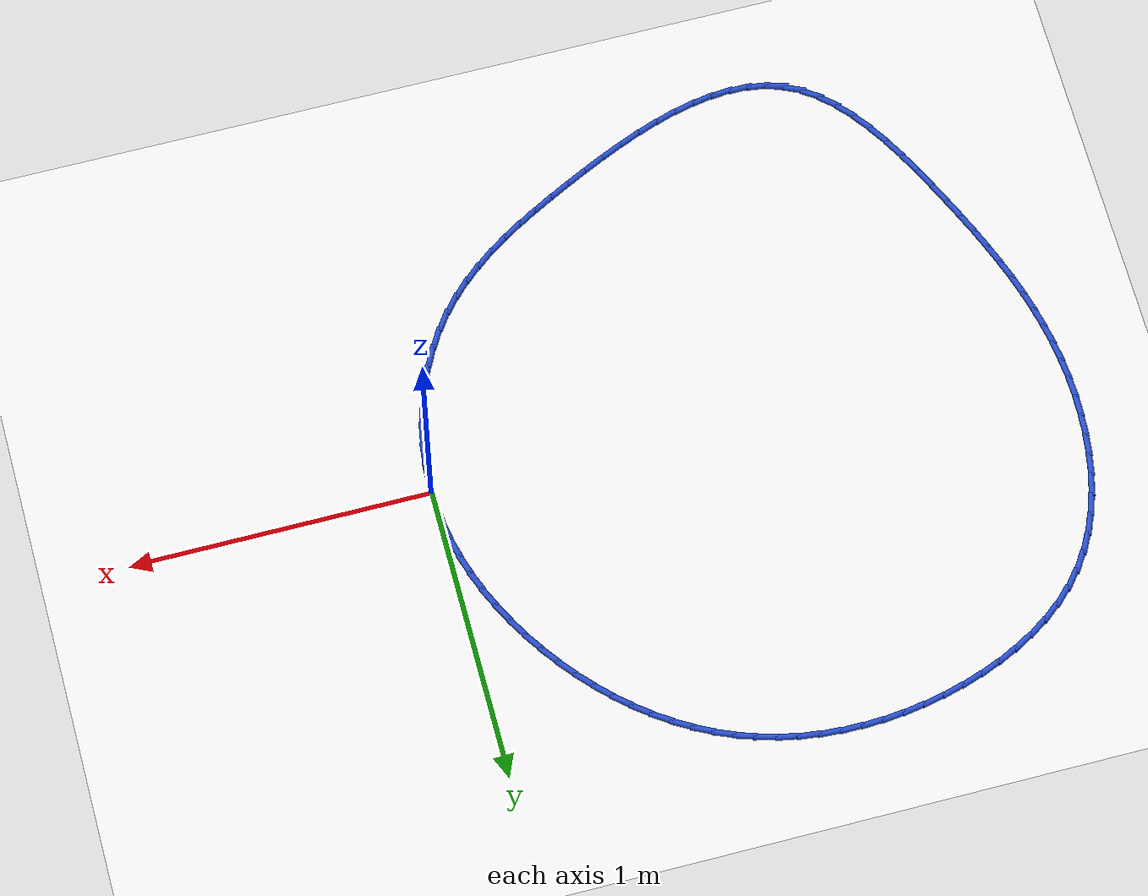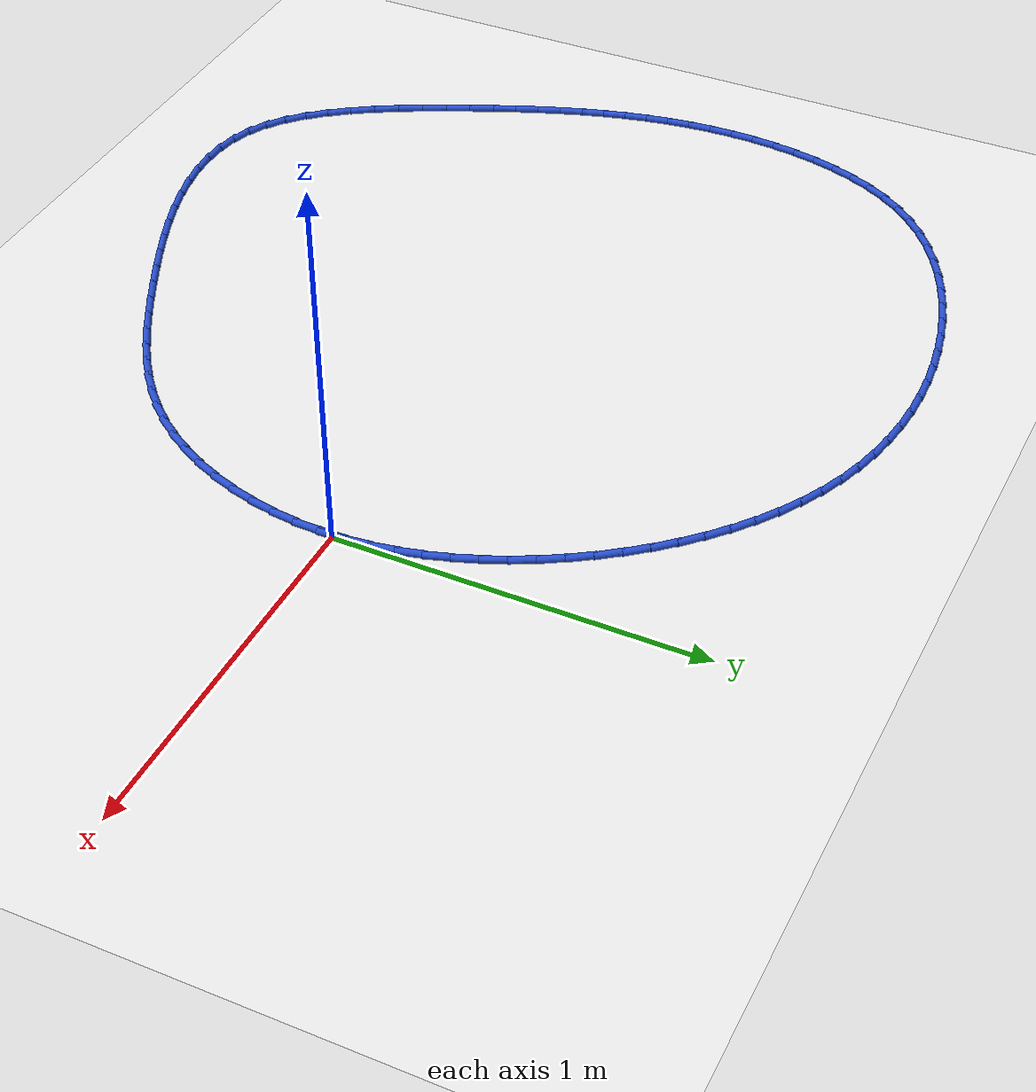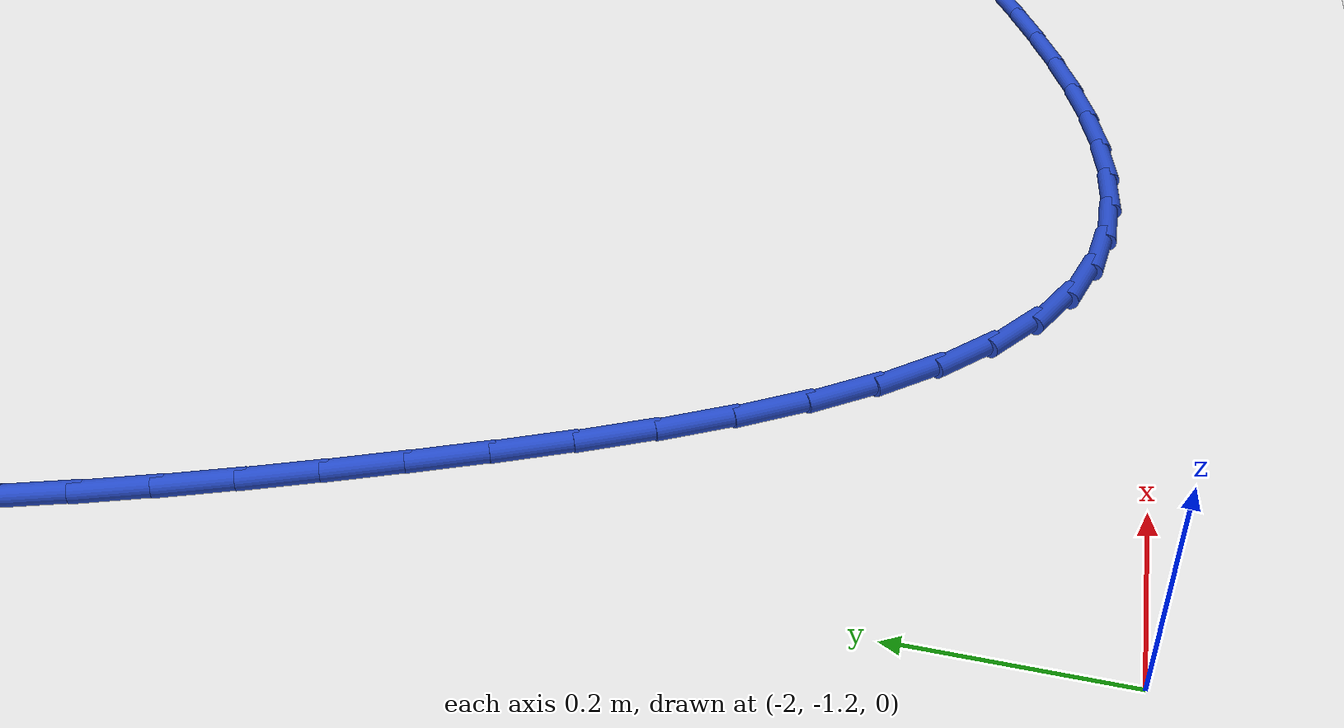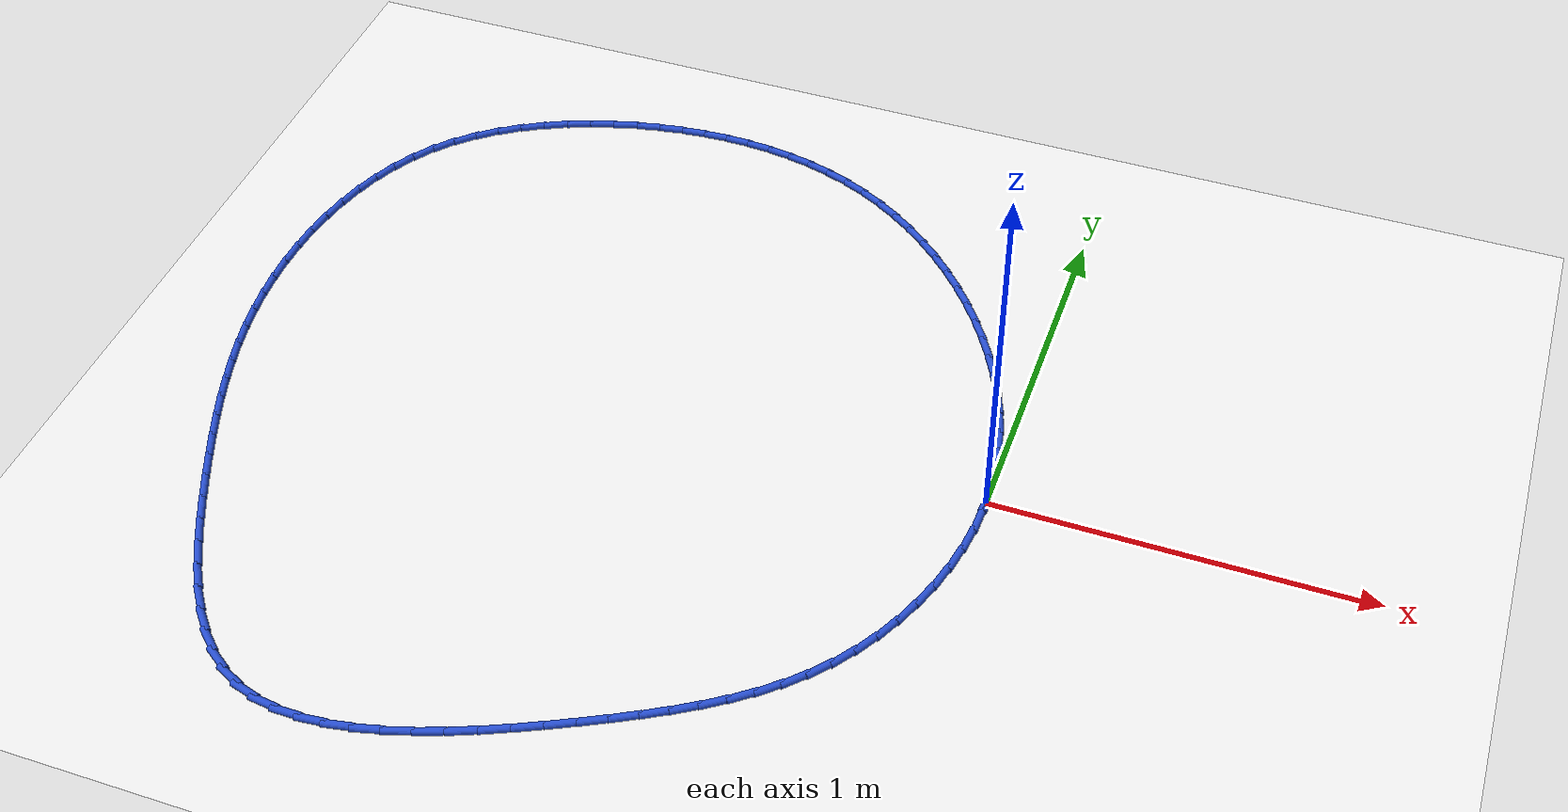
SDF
<sdf version="1.6">
 <world name="default">
  <light name="sun" type="directional">
   <pose>0 0 10 0 -0 0</pose>
   <diffuse>0.8 0.8 0.8 1</diffuse>
   <specular>0.2 0.2 0.2 1</specular>
   <attenuation>
    <range>1000</range>
    <constant>0.9</constant>
    <linear>0.01</linear>
    <quadratic>0.001</quadratic>
   </attenuation>
   <direction>-0.5 0.1 -0.9</direction>
  </light>
  <model name="ground_plane">
   <static>1</static>
   <link name="link">
    <collision name="collision">
     <geometry><plane><normal>0 0 1</normal><size>100 100</size></plane></geometry>
     <surface><friction><ode><mu>100</mu><mu2>50</mu2></ode></friction></surface>
    </collision>
    <visual name="visual">
     <cast_shadows>0</cast_shadows>
     <geometry><plane><normal>0 0 1</normal><size>100 100</size></plane></geometry>
     <material>
      <script><uri>file://media/materials/scripts/gazebo.material</uri><name>Gazebo/WhiteGlow</name></script>
     </material>
    </visual>
   </link>
  </model>
  <gravity>0 0 -9.8</gravity>
  <magnetic_field>6e-06 2.3e-05 -4.2e-05</magnetic_field>
  <atmosphere type="adiabatic"/>
  <physics name="default_physics" default="0" type="ode">
   <max_step_size>0.001</max_step_size>
   <real_time_factor>1</real_time_factor>
   <real_time_update_rate>1000</real_time_update_rate>
  </physics>
  <scene><ambient>0.4 0.4 0.4 1</ambient><background>0.7 0.7 0.7 1</background><shadows>1</shadows></scene>
  <spherical_coordinates>
   <surface_model>EARTH_WGS84</surface_model>
   <latitude_deg>0</latitude_deg>
   <longitude_deg>0</longitude_deg>
   <elevation>0</elevation>
   <heading_deg>0</heading_deg>
  </spherical_coordinates>
  <model name="line">
   <link name="link_0">
    <pose>-1.734723475976807e-17 4.163336342344337e-17 0.01 0 1.57 -1.5245327514098617</pose>
    <collision name="collision">
     <geometry><cylinder><radius>0.01</radius><length>0.08</length></cylinder></geometry>
    </collision>
    <visual name="visual">
     <material>
      <script><name>Gazebo/Blue</name><uri>file://media/materials/scripts/gazebo.material</uri></script>
     </material>
     <geometry><cylinder><radius>0.01</radius><length>0.08</length></cylinder></geometry>
    </visual>
   </link>
   <link name="link_1">
    <pose>-0.0031682612257454877 0.06843397887424127 0.01 0 1.57 -1.4518402445026588</pose>
    <collision name="collision">
     <geometry><cylinder><radius>0.01</radius><length>0.08</length></cylinder></geometry>
    </collision>
    <visual name="visual">
     <material>
      <script><name>Gazebo/Blue</name><uri>file://media/materials/scripts/gazebo.material</uri></script>
     </material>
     <geometry><cylinder><radius>0.01</radius><length>0.08</length></cylinder></geometry>
    </visual>
   </link>
   <link name="link_2">
    <pose>-0.011260114556649457 0.13613668951708363 0.01 0 1.57 -1.3819856675036761</pose>
    <collision name="collision">
     <geometry><cylinder><radius>0.01</radius><length>0.08</length></cylinder></geometry>
    </collision>
    <visual name="visual">
     <material>
      <script><name>Gazebo/Blue</name><uri>file://media/materials/scripts/gazebo.material</uri></script>
     </material>
     <geometry><cylinder><radius>0.01</radius><length>0.08</length></cylinder></geometry>
    </visual>
   </link>
   <link name="link_3">
    <pose>-0.024033953671069794 0.20298505319004592 0.01 0 1.57 -1.31518052326842</pose>
    <collision name="collision">
     <geometry><cylinder><radius>0.01</radius><length>0.08</length></cylinder></geometry>
    </collision>
    <visual name="visual">
     <material>
      <script><name>Gazebo/Blue</name><uri>file://media/materials/scripts/gazebo.material</uri></script>
     </material>
     <geometry><cylinder><radius>0.01</radius><length>0.08</length></cylinder></geometry>
    </visual>
   </link>
   <link name="link_4">
    <pose>-0.041248172247364344 0.2688559911546471 0.01 0 1.57 -1.2515093674222222</pose>
    <collision name="collision">
     <geometry><cylinder><radius>0.01</radius><length>0.08</length></cylinder></geometry>
    </collision>
    <visual name="visual">
     <material>
      <script><name>Gazebo/Blue</name><uri>file://media/materials/scripts/gazebo.material</uri></script>
     </material>
     <geometry><cylinder><radius>0.01</radius><length>0.08</length></cylinder></geometry>
    </visual>
   </link>
   <link name="link_5">
    <pose>-0.06266116396389096 0.3336264246724057 0.01 0 1.57 -1.190949175514414</pose>
    <collision name="collision">
     <geometry><cylinder><radius>0.01</radius><length>0.08</length></cylinder></geometry>
    </collision>
    <visual name="visual">
     <material>
      <script><name>Gazebo/Blue</name><uri>file://media/materials/scripts/gazebo.material</uri></script>
     </material>
     <geometry><cylinder><radius>0.01</radius><length>0.08</length></cylinder></geometry>
    </visual>
   </link>
   <link name="link_6">
    <pose>-0.0880313224990075 0.39717327500484084 0.01 0 1.57 -1.1333910003290848</pose>
    <collision name="collision">
     <geometry><cylinder><radius>0.01</radius><length>0.08</length></cylinder></geometry>
    </collision>
    <visual name="visual">
     <material>
      <script><name>Gazebo/Blue</name><uri>file://media/materials/scripts/gazebo.material</uri></script>
     </material>
     <geometry><cylinder><radius>0.01</radius><length>0.08</length></cylinder></geometry>
    </visual>
   </link>
   <link name="link_7">
    <pose>-0.11711704153107189 0.45937346341347135 0.01 0 1.57 -1.0786608907347195</pose>
    <collision name="collision">
     <geometry><cylinder><radius>0.01</radius><length>0.08</length></cylinder></geometry>
    </collision>
    <visual name="visual">
     <material>
      <script><name>Gazebo/Blue</name><uri>file://media/materials/scripts/gazebo.material</uri></script>
     </material>
     <geometry><cylinder><radius>0.01</radius><length>0.08</length></cylinder></geometry>
    </visual>
   </link>
   <link name="link_8">
    <pose>-0.14967671473844185 0.5201039111598158 0.01 0 1.57 -1.0265382006921953</pose>
    <collision name="collision">
     <geometry><cylinder><radius>0.01</radius><length>0.08</length></cylinder></geometry>
    </collision>
    <visual name="visual">
     <material>
      <script><name>Gazebo/Blue</name><uri>file://media/materials/scripts/gazebo.material</uri></script>
     </material>
     <geometry><cylinder><radius>0.01</radius><length>0.08</length></cylinder></geometry>
    </visual>
   </link>
   <link name="link_9">
    <pose>-0.18546873579947526 0.5792415395053929 0.01 0 1.57 -0.9764820869999071</pose>
    <collision name="collision">
     <geometry><cylinder><radius>0.01</radius><length>0.08</length></cylinder></geometry>
    </collision>
    <visual name="visual">
     <material>
      <script><name>Gazebo/Blue</name><uri>file://media/materials/scripts/gazebo.material</uri></script>
     </material>
     <geometry><cylinder><radius>0.01</radius><length>0.08</length></cylinder></geometry>
    </visual>
   </link>
   <link name="link_10">
    <pose>-0.2242650533660335 0.6366476474348572 0.01 0 1.57 -0.9263888777854111</pose>
    <collision name="collision">
     <geometry><cylinder><radius>0.01</radius><length>0.08</length></cylinder></geometry>
    </collision>
    <visual name="visual">
     <material>
      <script><name>Gazebo/Blue</name><uri>file://media/materials/scripts/gazebo.material</uri></script>
     </material>
     <geometry><cylinder><radius>0.01</radius><length>0.08</length></cylinder></geometry>
    </visual>
   </link>
   <link name="link_11">
    <pose>-0.26592231688586726 0.692085915203934 0.01 0 1.57 -0.8752031351286038</pose>
    <collision name="collision">
     <geometry><cylinder><radius>0.01</radius><length>0.08</length></cylinder></geometry>
    </collision>
    <visual name="visual">
     <material>
      <script><name>Gazebo/Blue</name><uri>file://media/materials/scripts/gazebo.material</uri></script>
     </material>
     <geometry><cylinder><radius>0.01</radius><length>0.08</length></cylinder></geometry>
    </visual>
   </link>
   <link name="link_12">
    <pose>-0.3103298285713556 0.7452823903478354 0.01 0 1.57 -0.8225610478972523</pose>
    <collision name="collision">
     <geometry><cylinder><radius>0.01</radius><length>0.08</length></cylinder></geometry>
    </collision>
    <visual name="visual">
     <material>
      <script><name>Gazebo/Blue</name><uri>file://media/materials/scripts/gazebo.material</uri></script>
     </material>
     <geometry><cylinder><radius>0.01</radius><length>0.08</length></cylinder></geometry>
    </visual>
   </link>
   <link name="link_13">
    <pose>-0.35737695978689793 0.7959630407032033 0.01 0 1.57 -0.7681085963375468</pose>
    <collision name="collision">
     <geometry><cylinder><radius>0.01</radius><length>0.08</length></cylinder></geometry>
    </collision>
    <visual name="visual">
     <material>
      <script><name>Gazebo/Blue</name><uri>file://media/materials/scripts/gazebo.material</uri></script>
     </material>
     <geometry><cylinder><radius>0.01</radius><length>0.08</length></cylinder></geometry>
    </visual>
   </link>
   <link name="link_14">
    <pose>-0.40695308189689355 0.8438538341066795 0.01 0 1.57 -0.711504061850845</pose>
    <collision name="collision">
     <geometry><cylinder><radius>0.01</radius><length>0.08</length></cylinder></geometry>
    </collision>
    <visual name="visual">
     <material>
      <script><name>Gazebo/Blue</name><uri>file://media/materials/scripts/gazebo.material</uri></script>
     </material>
     <geometry><cylinder><radius>0.01</radius><length>0.08</length></cylinder></geometry>
    </visual>
   </link>
   <link name="link_15">
    <pose>-0.45894756626574174 0.8886807383949054 0.01 0 1.57 -0.6524253490353193</pose>
    <collision name="collision">
     <geometry><cylinder><radius>0.01</radius><length>0.08</length></cylinder></geometry>
    </collision>
    <visual name="visual">
     <material>
      <script><name>Gazebo/Blue</name><uri>file://media/materials/scripts/gazebo.material</uri></script>
     </material>
     <geometry><cylinder><radius>0.01</radius><length>0.08</length></cylinder></geometry>
    </visual>
   </link>
   <link name="link_16">
    <pose>-0.5132497842578418 0.9301697214045229 0.01 0 1.57 -0.5905813440640889</pose>
    <collision name="collision">
     <geometry><cylinder><radius>0.01</radius><length>0.08</length></cylinder></geometry>
    </collision>
    <visual name="visual">
     <material>
      <script><name>Gazebo/Blue</name><uri>file://media/materials/scripts/gazebo.material</uri></script>
     </material>
     <geometry><cylinder><radius>0.01</radius><length>0.08</length></cylinder></geometry>
    </visual>
   </link>
   <link name="link_17">
    <pose>-0.5697491072375935 0.968046750972174 0.01 0 1.57 -0.5257278582089316</pose>
    <collision name="collision">
     <geometry><cylinder><radius>0.01</radius><length>0.08</length></cylinder></geometry>
    </collision>
    <visual name="visual">
     <material>
      <script><name>Gazebo/Blue</name><uri>file://media/materials/scripts/gazebo.material</uri></script>
     </material>
     <geometry><cylinder><radius>0.01</radius><length>0.08</length></cylinder></geometry>
    </visual>
   </link>
   <link name="link_18">
    <pose>-0.628334906569396 1.0020377949345003 0.01 0 1.57 -0.45768829621010804</pose>
    <collision name="collision">
     <geometry><cylinder><radius>0.01</radius><length>0.08</length></cylinder></geometry>
    </collision>
    <visual name="visual">
     <material>
      <script><name>Gazebo/Blue</name><uri>file://media/materials/scripts/gazebo.material</uri></script>
     </material>
     <geometry><cylinder><radius>0.01</radius><length>0.08</length></cylinder></geometry>
    </visual>
   </link>
   <link name="link_19">
    <pose>-0.6888965536176486 1.0318688211281437 0.01 0 1.57 -0.3865698012630083</pose>
    <collision name="collision">
     <geometry><cylinder><radius>0.01</radius><length>0.08</length></cylinder></geometry>
    </collision>
    <visual name="visual">
     <material>
      <script><name>Gazebo/Blue</name><uri>file://media/materials/scripts/gazebo.material</uri></script>
     </material>
     <geometry><cylinder><radius>0.01</radius><length>0.08</length></cylinder></geometry>
    </visual>
   </link>
   <link name="link_20">
    <pose>-0.7513191730528106 1.0572779957554557 0.01 0 1.57 -0.3154298299164534</pose>
    <collision name="collision">
     <geometry><cylinder><radius>0.01</radius><length>0.08</length></cylinder></geometry>
    </collision>
    <visual name="visual">
     <material>
      <script><name>Gazebo/Blue</name><uri>file://media/materials/scripts/gazebo.material</uri></script>
     </material>
     <geometry><cylinder><radius>0.01</radius><length>0.08</length></cylinder></geometry>
    </visual>
   </link>
   <link name="link_21">
    <pose>-0.8154208743353516 1.0781959820650089 0.01 0 1.57 -0.24676630924045534</pose>
    <collision name="collision">
     <geometry><cylinder><radius>0.01</radius><length>0.08</length></cylinder></geometry>
    </collision>
    <visual name="visual">
     <material>
      <script><name>Gazebo/Blue</name><uri>file://media/materials/scripts/gazebo.material</uri></script>
     </material>
     <geometry><cylinder><radius>0.01</radius><length>0.08</length></cylinder></geometry>
    </visual>
   </link>
   <link name="link_22">
    <pose>-0.880966342949498 1.0947069003731886 0.01 0 1.57 -0.18065716747019908</pose>
    <collision name="collision">
     <geometry><cylinder><radius>0.01</radius><length>0.08</length></cylinder></geometry>
    </collision>
    <visual name="visual">
     <material>
      <script><name>Gazebo/Blue</name><uri>file://media/materials/scripts/gazebo.material</uri></script>
     </material>
     <geometry><cylinder><radius>0.01</radius><length>0.08</length></cylinder></geometry>
    </visual>
   </link>
   <link name="link_23">
    <pose>-0.9477187797841551 1.106899135404628 0.01 0 1.57 -0.1170296740622592</pose>
    <collision name="collision">
     <geometry><cylinder><radius>0.01</radius><length>0.08</length></cylinder></geometry>
    </collision>
    <visual name="visual">
     <material>
      <script><name>Gazebo/Blue</name><uri>file://media/materials/scripts/gazebo.material</uri></script>
     </material>
     <geometry><cylinder><radius>0.01</radius><length>0.08</length></cylinder></geometry>
    </visual>
   </link>
   <link name="link_24">
    <pose>-1.0154413857282276 1.1148610718839607 0.01 0 1.57 -0.055744803781004146</pose>
    <collision name="collision">
     <geometry><cylinder><radius>0.01</radius><length>0.08</length></cylinder></geometry>
    </collision>
    <visual name="visual">
     <material>
      <script><name>Gazebo/Blue</name><uri>file://media/materials/scripts/gazebo.material</uri></script>
     </material>
     <geometry><cylinder><radius>0.01</radius><length>0.08</length></cylinder></geometry>
    </visual>
   </link>
   <link name="link_25">
    <pose>-1.0838973616706207 1.1186810945358188 0.01 0 1.57 0.0033864674923224066</pose>
    <collision name="collision">
     <geometry><cylinder><radius>0.01</radius><length>0.08</length></cylinder></geometry>
    </collision>
    <visual name="visual">
     <material>
      <script><name>Gazebo/Blue</name><uri>file://media/materials/scripts/gazebo.material</uri></script>
     </material>
     <geometry><cylinder><radius>0.01</radius><length>0.08</length></cylinder></geometry>
    </visual>
   </link>
   <link name="link_26">
    <pose>-1.15284990850024 1.1184475880848368 0.01 0 1.57 0.06058909530724834</pose>
    <collision name="collision">
     <geometry><cylinder><radius>0.01</radius><length>0.08</length></cylinder></geometry>
    </collision>
    <visual name="visual">
     <material>
      <script><name>Gazebo/Blue</name><uri>file://media/materials/scripts/gazebo.material</uri></script>
     </material>
     <geometry><cylinder><radius>0.01</radius><length>0.08</length></cylinder></geometry>
    </visual>
   </link>
   <link name="link_27">
    <pose>-1.22206222710599 1.1142489372556472 0.01 0 1.57 0.11611255534356947</pose>
    <collision name="collision">
     <geometry><cylinder><radius>0.01</radius><length>0.08</length></cylinder></geometry>
    </collision>
    <visual name="visual">
     <material>
      <script><name>Gazebo/Blue</name><uri>file://media/materials/scripts/gazebo.material</uri></script>
     </material>
     <geometry><cylinder><radius>0.01</radius><length>0.08</length></cylinder></geometry>
    </visual>
   </link>
   <link name="link_28">
    <pose>-1.2912975183767759 1.1061735267728834 0.01 0 1.57 0.170222073601596</pose>
    <collision name="collision">
     <geometry><cylinder><radius>0.01</radius><length>0.08</length></cylinder></geometry>
    </collision>
    <visual name="visual">
     <material>
      <script><name>Gazebo/Blue</name><uri>file://media/materials/scripts/gazebo.material</uri></script>
     </material>
     <geometry><cylinder><radius>0.01</radius><length>0.08</length></cylinder></geometry>
    </visual>
   </link>
   <link name="link_29">
    <pose>-1.3603189832015026 1.0943097413611784 0.01 0 1.57 0.2231922685439485</pose>
    <collision name="collision">
     <geometry><cylinder><radius>0.01</radius><length>0.08</length></cylinder></geometry>
    </collision>
    <visual name="visual">
     <material>
      <script><name>Gazebo/Blue</name><uri>file://media/materials/scripts/gazebo.material</uri></script>
     </material>
     <geometry><cylinder><radius>0.01</radius><length>0.08</length></cylinder></geometry>
    </visual>
   </link>
   <link name="link_30">
    <pose>-1.4288898183981091 1.0787459633064551 0.01 0 1.57 0.2760408595518879</pose>
    <collision name="collision">
     <geometry><cylinder><radius>0.01</radius><length>0.08</length></cylinder></geometry>
    </collision>
    <visual name="visual">
     <material>
      <script><name>Gazebo/Blue</name><uri>file://media/materials/scripts/gazebo.material</uri></script>
     </material>
     <geometry><cylinder><radius>0.01</radius><length>0.08</length></cylinder></geometry>
    </visual>
   </link>
   <link name="link_31">
    <pose>-1.4967118781594464 1.059533827619664 0.01 0 1.57 0.33188574661725295</pose>
    <collision name="collision">
     <geometry><cylinder><radius>0.01</radius><length>0.08</length></cylinder></geometry>
    </collision>
    <visual name="visual">
     <material>
      <script><name>Gazebo/Blue</name><uri>file://media/materials/scripts/gazebo.material</uri></script>
     </material>
     <geometry><cylinder><radius>0.01</radius><length>0.08</length></cylinder></geometry>
    </visual>
   </link>
   <link name="link_32">
    <pose>-1.5632707652836333 1.03659542400042 0.01 0 1.57 0.39213912290106556</pose>
    <collision name="collision">
     <geometry><cylinder><radius>0.01</radius><length>0.08</length></cylinder></geometry>
    </collision>
    <visual name="visual">
     <material>
      <script><name>Gazebo/Blue</name><uri>file://media/materials/scripts/gazebo.material</uri></script>
     </material>
     <geometry><cylinder><radius>0.01</radius><length>0.08</length></cylinder></geometry>
    </visual>
   </link>
   <link name="link_33">
    <pose>-1.6280044534876907 1.0098243099663966 0.01 0 1.57 0.4576894419616904</pose>
    <collision name="collision">
     <geometry><cylinder><radius>0.01</radius><length>0.08</length></cylinder></geometry>
    </collision>
    <visual name="visual">
     <material>
      <script><name>Gazebo/Blue</name><uri>file://media/materials/scripts/gazebo.material</uri></script>
     </material>
     <geometry><cylinder><radius>0.01</radius><length>0.08</length></cylinder></geometry>
    </visual>
   </link>
   <link name="link_34">
    <pose>-1.6903509164886374 0.9791140430352658 0.01 0 1.57 0.5294235997482111</pose>
    <collision name="collision">
     <geometry><cylinder><radius>0.01</radius><length>0.08</length></cylinder></geometry>
    </collision>
    <visual name="visual">
     <material>
      <script><name>Gazebo/Blue</name><uri>file://media/materials/scripts/gazebo.material</uri></script>
     </material>
     <geometry><cylinder><radius>0.01</radius><length>0.08</length></cylinder></geometry>
    </visual>
   </link>
   <link name="link_35">
    <pose>-1.7497481280034919 0.9443581807246997 0.01 0 1.57 0.6081724363530938</pose>
    <collision name="collision">
     <geometry><cylinder><radius>0.01</radius><length>0.08</length></cylinder></geometry>
    </collision>
    <visual name="visual">
     <material>
      <script><name>Gazebo/Blue</name><uri>file://media/materials/scripts/gazebo.material</uri></script>
     </material>
     <geometry><cylinder><radius>0.01</radius><length>0.08</length></cylinder></geometry>
    </visual>
   </link>
   <link name="link_36">
    <pose>-1.8056340617492739 0.9054502805523715 0.01 0 1.57 0.694615123692621</pose>
    <collision name="collision">
     <geometry><cylinder><radius>0.01</radius><length>0.08</length></cylinder></geometry>
    </collision>
    <visual name="visual">
     <material>
      <script><name>Gazebo/Blue</name><uri>file://media/materials/scripts/gazebo.material</uri></script>
     </material>
     <geometry><cylinder><radius>0.01</radius><length>0.08</length></cylinder></geometry>
    </visual>
   </link>
   <link name="link_37">
    <pose>-1.8574466914430026 0.8622839000359528 0.01 0 1.57 0.7891359688915993</pose>
    <collision name="collision">
     <geometry><cylinder><radius>0.01</radius><length>0.08</length></cylinder></geometry>
    </collision>
    <visual name="visual">
     <material>
      <script><name>Gazebo/Blue</name><uri>file://media/materials/scripts/gazebo.material</uri></script>
     </material>
     <geometry><cylinder><radius>0.01</radius><length>0.08</length></cylinder></geometry>
    </visual>
   </link>
   <link name="link_38">
    <pose>-1.904623990801697 0.8147525966931166 0.01 0 1.57 0.8915822404530481</pose>
    <collision name="collision">
     <geometry><cylinder><radius>0.01</radius><length>0.08</length></cylinder></geometry>
    </collision>
    <visual name="visual">
     <material>
      <script><name>Gazebo/Blue</name><uri>file://media/materials/scripts/gazebo.material</uri></script>
     </material>
     <geometry><cylinder><radius>0.01</radius><length>0.08</length></cylinder></geometry>
    </visual>
   </link>
   <link name="link_39">
    <pose>-1.946606820615674 0.7627526121469718 0.01 0 1.57 0.9959120641032392</pose>
    <collision name="collision">
     <geometry><cylinder><radius>0.01</radius><length>0.08</length></cylinder></geometry>
    </collision>
    <visual name="visual">
     <material>
      <script><name>Gazebo/Blue</name><uri>file://media/materials/scripts/gazebo.material</uri></script>
     </material>
     <geometry><cylinder><radius>0.01</radius><length>0.08</length></cylinder></geometry>
    </visual>
   </link>
   <link name="link_40">
    <pose>-1.9831000234935874 0.7064256113129412 0.01 0 1.57 1.092030992431349</pose>
    <collision name="collision">
     <geometry><cylinder><radius>0.01</radius><length>0.08</length></cylinder></geometry>
    </collision>
    <visual name="visual">
     <material>
      <script><name>Gazebo/Blue</name><uri>file://media/materials/scripts/gazebo.material</uri></script>
     </material>
     <geometry><cylinder><radius>0.01</radius><length>0.08</length></cylinder></geometry>
    </visual>
   </link>
   <link name="link_41">
    <pose>-2.0142806457669553 0.6463522658268261 0.01 0 1.57 1.1791985986544256</pose>
    <collision name="collision">
     <geometry><cylinder><radius>0.01</radius><length>0.08</length></cylinder></geometry>
    </collision>
    <visual name="visual">
     <material>
      <script><name>Gazebo/Blue</name><uri>file://media/materials/scripts/gazebo.material</uri></script>
     </material>
     <geometry><cylinder><radius>0.01</radius><length>0.08</length></cylinder></geometry>
    </visual>
   </link>
   <link name="link_42">
    <pose>-2.040374733168974 0.5831588019560194 0.01 0 1.57 1.2581458447631666</pose>
    <collision name="collision">
     <geometry><cylinder><radius>0.01</radius><length>0.08</length></cylinder></geometry>
    </collision>
    <visual name="visual">
     <material>
      <script><name>Gazebo/Blue</name><uri>file://media/materials/scripts/gazebo.material</uri></script>
     </material>
     <geometry><cylinder><radius>0.01</radius><length>0.08</length></cylinder></geometry>
    </visual>
   </link>
   <link name="link_43">
    <pose>-2.06160833143284 0.5174714459679123 0.01 0 1.57 1.3298564307150702</pose>
    <collision name="collision">
     <geometry><cylinder><radius>0.01</radius><length>0.08</length></cylinder></geometry>
    </collision>
    <visual name="visual">
     <material>
      <script><name>Gazebo/Blue</name><uri>file://media/materials/scripts/gazebo.material</uri></script>
     </material>
     <geometry><cylinder><radius>0.01</radius><length>0.08</length></cylinder></geometry>
    </visual>
   </link>
   <link name="link_44">
    <pose>-2.0782074862917472 0.44991642412989763 0.01 0 1.57 1.3954164922639634</pose>
    <collision name="collision">
     <geometry><cylinder><radius>0.01</radius><length>0.08</length></cylinder></geometry>
    </collision>
    <visual name="visual">
     <material>
      <script><name>Gazebo/Blue</name><uri>file://media/materials/scripts/gazebo.material</uri></script>
     </material>
     <geometry><cylinder><radius>0.01</radius><length>0.08</length></cylinder></geometry>
    </visual>
   </link>
   <link name="link_45">
    <pose>-2.090398243478893 0.38111996270936765 0.01 0 1.57 1.4559287373372132</pose>
    <collision name="collision">
     <geometry><cylinder><radius>0.01</radius><length>0.08</length></cylinder></geometry>
    </collision>
    <visual name="visual">
     <material>
      <script><name>Gazebo/Blue</name><uri>file://media/materials/scripts/gazebo.material</uri></script>
     </material>
     <geometry><cylinder><radius>0.01</radius><length>0.08</length></cylinder></geometry>
    </visual>
   </link>
   <link name="link_46">
    <pose>-2.098406648727472 0.3117082879737145 0.01 0 1.57 1.5124755019331309</pose>
    <collision name="collision">
     <geometry><cylinder><radius>0.01</radius><length>0.08</length></cylinder></geometry>
    </collision>
    <visual name="visual">
     <material>
      <script><name>Gazebo/Blue</name><uri>file://media/materials/scripts/gazebo.material</uri></script>
     </material>
     <geometry><cylinder><radius>0.01</radius><length>0.08</length></cylinder></geometry>
    </visual>
   </link>
   <link name="link_47">
    <pose>-2.102458747770681 0.2423076261903308 0.01 0 1.57 1.5661159881058435</pose>
    <collision name="collision">
     <geometry><cylinder><radius>0.01</radius><length>0.08</length></cylinder></geometry>
    </collision>
    <visual name="visual">
     <material>
      <script><name>Gazebo/Blue</name><uri>file://media/materials/scripts/gazebo.material</uri></script>
     </material>
     <geometry><cylinder><radius>0.01</radius><length>0.08</length></cylinder></geometry>
    </visual>
   </link>
   <link name="link_48">
    <pose>-2.1027805862369244 0.17354420165985726 0.01 0 1.57 -1.5236717687818275</pose>
    <collision name="collision">
     <geometry><cylinder><radius>0.01</radius><length>0.08</length></cylinder></geometry>
    </collision>
    <visual name="visual">
     <material>
      <script><name>Gazebo/Blue</name><uri>file://media/materials/scripts/gazebo.material</uri></script>
     </material>
     <geometry><cylinder><radius>0.01</radius><length>0.08</length></cylinder></geometry>
    </visual>
   </link>
   <link name="link_49">
    <pose>-2.09959049683018 0.10589947976818578 0.01 0 1.57 -1.4732978724244812</pose>
    <collision name="collision">
     <geometry><cylinder><radius>0.01</radius><length>0.08</length></cylinder></geometry>
    </collision>
    <visual name="visual">
     <material>
      <script><name>Gazebo/Blue</name><uri>file://media/materials/scripts/gazebo.material</uri></script>
     </material>
     <geometry><cylinder><radius>0.01</radius><length>0.08</length></cylinder></geometry>
    </visual>
   </link>
   <link name="link_50">
    <pose>-2.0930781406080814 0.03931680622325958 0.01 0 1.57 -1.424940190587055</pose>
    <collision name="collision">
     <geometry><cylinder><radius>0.01</radius><length>0.08</length></cylinder></geometry>
    </collision>
    <visual name="visual">
     <material>
      <script><name>Gazebo/Blue</name><uri>file://media/materials/scripts/gazebo.material</uri></script>
     </material>
     <geometry><cylinder><radius>0.01</radius><length>0.08</length></cylinder></geometry>
    </visual>
   </link>
   <link name="link_51">
    <pose>-2.083426517723948 -0.026385487493245763 0.01 0 1.57 -1.379218193447322</pose>
    <collision name="collision">
     <geometry><cylinder><radius>0.01</radius><length>0.08</length></cylinder></geometry>
    </collision>
    <visual name="visual">
     <material>
      <script><name>Gazebo/Blue</name><uri>file://media/materials/scripts/gazebo.material</uri></script>
     </material>
     <geometry><cylinder><radius>0.01</radius><length>0.08</length></cylinder></geometry>
    </visual>
   </link>
   <link name="link_52">
    <pose>-2.070818628331101 -0.09138906989965466 0.01 0 1.57 -1.3366537584762312</pose>
    <collision name="collision">
     <geometry><cylinder><radius>0.01</radius><length>0.08</length></cylinder></geometry>
    </collision>
    <visual name="visual">
     <material>
      <script><name>Gazebo/Blue</name><uri>file://media/materials/scripts/gazebo.material</uri></script>
     </material>
     <geometry><cylinder><radius>0.01</radius><length>0.08</length></cylinder></geometry>
    </visual>
   </link>
   <link name="link_53">
    <pose>-2.0554374725828612 -0.15587560951429139 0.01 0 1.57 -1.2976561516235223</pose>
    <collision name="collision">
     <geometry><cylinder><radius>0.01</radius><length>0.08</length></cylinder></geometry>
    </collision>
    <visual name="visual">
     <material>
      <script><name>Gazebo/Blue</name><uri>file://media/materials/scripts/gazebo.material</uri></script>
     </material>
     <geometry><cylinder><radius>0.01</radius><length>0.08</length></cylinder></geometry>
    </visual>
   </link>
   <link name="link_54">
    <pose>-2.0374660506325486 -0.22002677485548044 0.01 0 1.57 -1.2625185231910663</pose>
    <collision name="collision">
     <geometry><cylinder><radius>0.01</radius><length>0.08</length></cylinder></geometry>
    </collision>
    <visual name="visual">
     <material>
      <script><name>Gazebo/Blue</name><uri>file://media/materials/scripts/gazebo.material</uri></script>
     </material>
     <geometry><cylinder><radius>0.01</radius><length>0.08</length></cylinder></geometry>
    </visual>
   </link>
   <link name="link_55">
    <pose>-2.017087362633484 -0.2840242344415463 0.01 0 1.57 -1.2314239099485238</pose>
    <collision name="collision">
     <geometry><cylinder><radius>0.01</radius><length>0.08</length></cylinder></geometry>
    </collision>
    <visual name="visual">
     <material>
      <script><name>Gazebo/Blue</name><uri>file://media/materials/scripts/gazebo.material</uri></script>
     </material>
     <geometry><cylinder><radius>0.01</radius><length>0.08</length></cylinder></geometry>
    </visual>
   </link>
   <link name="link_56">
    <pose>-1.9944844087389888 -0.34804965679081323 0.01 0 1.57 -1.2044577554976836</pose>
    <collision name="collision">
     <geometry><cylinder><radius>0.01</radius><length>0.08</length></cylinder></geometry>
    </collision>
    <visual name="visual">
     <material>
      <script><name>Gazebo/Blue</name><uri>file://media/materials/scripts/gazebo.material</uri></script>
     </material>
     <geometry><cylinder><radius>0.01</radius><length>0.08</length></cylinder></geometry>
    </visual>
   </link>
   <link name="link_57">
    <pose>-1.969840189102382 -0.4122847104216055 0.01 0 1.57 -1.1816238521269864</pose>
    <collision name="collision">
     <geometry><cylinder><radius>0.01</radius><length>0.08</length></cylinder></geometry>
    </collision>
    <visual name="visual">
     <material>
      <script><name>Gazebo/Blue</name><uri>file://media/materials/scripts/gazebo.material</uri></script>
     </material>
     <geometry><cylinder><radius>0.01</radius><length>0.08</length></cylinder></geometry>
    </visual>
   </link>
   <link name="link_58">
    <pose>-1.9433377038769848 -0.476911063852247 0.01 0 1.57 -1.1628610989388468</pose>
    <collision name="collision">
     <geometry><cylinder><radius>0.01</radius><length>0.08</length></cylinder></geometry>
    </collision>
    <visual name="visual">
     <material>
      <script><name>Gazebo/Blue</name><uri>file://media/materials/scripts/gazebo.material</uri></script>
     </material>
     <geometry><cylinder><radius>0.01</radius><length>0.08</length></cylinder></geometry>
    </visual>
   </link>
   <link name="link_59">
    <pose>-1.9151599532161179 -0.5421103856010636 0.01 0 1.57 -1.1480576776301632</pose>
    <collision name="collision">
     <geometry><cylinder><radius>0.01</radius><length>0.08</length></cylinder></geometry>
    </collision>
    <visual name="visual">
     <material>
      <script><name>Gazebo/Blue</name><uri>file://media/materials/scripts/gazebo.material</uri></script>
     </material>
     <geometry><cylinder><radius>0.01</radius><length>0.08</length></cylinder></geometry>
    </visual>
   </link>
   <link name="link_60">
    <pose>-1.885489883718577 -0.6080641891035905 0.01 0 1.57 -1.1343257437993024</pose>
    <collision name="collision">
     <geometry><cylinder><radius>0.01</radius><length>0.08</length></cylinder></geometry>
    </collision>
    <visual name="visual">
     <material>
      <script><name>Gazebo/Blue</name><uri>file://media/materials/scripts/gazebo.material</uri></script>
     </material>
     <geometry><cylinder><radius>0.01</radius><length>0.08</length></cylinder></geometry>
    </visual>
   </link>
   <link name="link_61">
    <pose>-1.8544155625196679 -0.6746792365601473 0.01 0 1.57 -1.1130797659247358</pose>
    <collision name="collision">
     <geometry><cylinder><radius>0.01</radius><length>0.08</length></cylinder></geometry>
    </collision>
    <visual name="visual">
     <material>
      <script><name>Gazebo/Blue</name><uri>file://media/materials/scripts/gazebo.material</uri></script>
     </material>
     <geometry><cylinder><radius>0.01</radius><length>0.08</length></cylinder></geometry>
    </visual>
   </link>
   <link name="link_62">
    <pose>-1.8217347586856234 -0.7410216472107722 0.01 0 1.57 -1.082144086636939</pose>
    <collision name="collision">
     <geometry><cylinder><radius>0.01</radius><length>0.08</length></cylinder></geometry>
    </collision>
    <visual name="visual">
     <material>
      <script><name>Gazebo/Blue</name><uri>file://media/materials/scripts/gazebo.material</uri></script>
     </material>
     <geometry><cylinder><radius>0.01</radius><length>0.08</length></cylinder></geometry>
    </visual>
   </link>
   <link name="link_63">
    <pose>-1.7871899116892744 -0.8059973172759748 0.01 0 1.57 -1.0403445229435588</pose>
    <collision name="collision">
     <geometry><cylinder><radius>0.01</radius><length>0.08</length></cylinder></geometry>
    </collision>
    <visual name="visual">
     <material>
      <script><name>Gazebo/Blue</name><uri>file://media/materials/scripts/gazebo.material</uri></script>
     </material>
     <geometry><cylinder><radius>0.01</radius><length>0.08</length></cylinder></geometry>
    </visual>
   </link>
   <link name="link_64">
    <pose>-1.7505234610034508 -0.8685121429762634 0.01 0 1.57 -0.9858643013369842</pose>
    <collision name="collision">
     <geometry><cylinder><radius>0.01</radius><length>0.08</length></cylinder></geometry>
    </collision>
    <visual name="visual">
     <material>
      <script><name>Gazebo/Blue</name><uri>file://media/materials/scripts/gazebo.material</uri></script>
     </material>
     <geometry><cylinder><radius>0.01</radius><length>0.08</length></cylinder></geometry>
    </visual>
   </link>
   <link name="link_65">
    <pose>-1.7114778461009799 -0.927472020532147 0.01 0 1.57 -0.9162030961005924</pose>
    <collision name="collision">
     <geometry><cylinder><radius>0.01</radius><length>0.08</length></cylinder></geometry>
    </collision>
    <visual name="visual">
     <material>
      <script><name>Gazebo/Blue</name><uri>file://media/materials/scripts/gazebo.material</uri></script>
     </material>
     <geometry><cylinder><radius>0.01</radius><length>0.08</length></cylinder></geometry>
    </visual>
   </link>
   <link name="link_66">
    <pose>-1.669795506454693 -0.9817828461641342 0.01 0 1.57 -0.8282199513830465</pose>
    <collision name="collision">
     <geometry><cylinder><radius>0.01</radius><length>0.08</length></cylinder></geometry>
    </collision>
    <visual name="visual">
     <material>
      <script><name>Gazebo/Blue</name><uri>file://media/materials/scripts/gazebo.material</uri></script>
     </material>
     <geometry><cylinder><radius>0.01</radius><length>0.08</length></cylinder></geometry>
    </visual>
   </link>
   <link name="link_67">
    <pose>-1.6252188815374187 -1.030350516092734 0.01 0 1.57 -0.7184501272483433</pose>
    <collision name="collision">
     <geometry><cylinder><radius>0.01</radius><length>0.08</length></cylinder></geometry>
    </collision>
    <visual name="visual">
     <material>
      <script><name>Gazebo/Blue</name><uri>file://media/materials/scripts/gazebo.material</uri></script>
     </material>
     <geometry><cylinder><radius>0.01</radius><length>0.08</length></cylinder></geometry>
    </visual>
   </link>
   <link name="link_68">
    <pose>-1.5774904108219878 -1.0720809265384557 0.01 0 1.57 -0.5840272130968509</pose>
    <collision name="collision">
     <geometry><cylinder><radius>0.01</radius><length>0.08</length></cylinder></geometry>
    </collision>
    <visual name="visual">
     <material>
      <script><name>Gazebo/Blue</name><uri>file://media/materials/scripts/gazebo.material</uri></script>
     </material>
     <geometry><cylinder><radius>0.01</radius><length>0.08</length></cylinder></geometry>
    </visual>
   </link>
   <link name="link_69">
    <pose>-1.526352533781229 -1.1058799737218077 0.01 0 1.57 -0.4254876168250057</pose>
    <collision name="collision">
     <geometry><cylinder><radius>0.01</radius><length>0.08</length></cylinder></geometry>
    </collision>
    <visual name="visual">
     <material>
      <script><name>Gazebo/Blue</name><uri>file://media/materials/scripts/gazebo.material</uri></script>
     </material>
     <geometry><cylinder><radius>0.01</radius><length>0.08</length></cylinder></geometry>
    </visual>
   </link>
   <link name="link_70">
    <pose>-1.4715681736003279 -1.1307066448620404 0.01 0 1.57 -0.2641788718484958</pose>
    <collision name="collision">
     <geometry><cylinder><radius>0.01</radius><length>0.08</length></cylinder></geometry>
    </collision>
    <visual name="visual">
     <material>
      <script><name>Gazebo/Blue</name><uri>file://media/materials/scripts/gazebo.material</uri></script>
     </material>
     <geometry><cylinder><radius>0.01</radius><length>0.08</length></cylinder></geometry>
    </visual>
   </link>
   <link name="link_71">
    <pose>-1.413269338929775 -1.146476546546668 0.01 0 1.57 -0.12095030681677402</pose>
    <collision name="collision">
     <geometry><cylinder><radius>0.01</radius><length>0.08</length></cylinder></geometry>
    </collision>
    <visual name="visual">
     <material>
      <script><name>Gazebo/Blue</name><uri>file://media/materials/scripts/gazebo.material</uri></script>
     </material>
     <geometry><cylinder><radius>0.01</radius><length>0.08</length></cylinder></geometry>
    </visual>
   </link>
   <link name="link_72">
    <pose>-1.3519080149430525 -1.1539346210267878 0.01 0 1.57 0.0012716917558701025</pose>
    <collision name="collision">
     <geometry><cylinder><radius>0.01</radius><length>0.08</length></cylinder></geometry>
    </collision>
    <visual name="visual">
     <material>
      <script><name>Gazebo/Blue</name><uri>file://media/materials/scripts/gazebo.material</uri></script>
     </material>
     <geometry><cylinder><radius>0.01</radius><length>0.08</length></cylinder></geometry>
    </visual>
   </link>
   <link name="link_73">
    <pose>-1.2879467859271496 -1.1538532820153058 0.01 0 1.57 0.10323964257382612</pose>
    <collision name="collision">
     <geometry><cylinder><radius>0.01</radius><length>0.08</length></cylinder></geometry>
    </collision>
    <visual name="visual">
     <material>
      <script><name>Gazebo/Blue</name><uri>file://media/materials/scripts/gazebo.material</uri></script>
     </material>
     <geometry><cylinder><radius>0.01</radius><length>0.08</length></cylinder></geometry>
    </visual>
   </link>
   <link name="link_74">
    <pose>-1.2218482361690544 -1.1470049432251277 0.01 0 1.57 0.18727771556060177</pose>
    <collision name="collision">
     <geometry><cylinder><radius>0.01</radius><length>0.08</length></cylinder></geometry>
    </collision>
    <visual name="visual">
     <material>
      <script><name>Gazebo/Blue</name><uri>file://media/materials/scripts/gazebo.material</uri></script>
     </material>
     <geometry><cylinder><radius>0.01</radius><length>0.08</length></cylinder></geometry>
    </visual>
   </link>
   <link name="link_75">
    <pose>-1.1540749499557537 -1.1341620183691594 0.01 0 1.57 0.25611723015715515</pose>
    <collision name="collision">
     <geometry><cylinder><radius>0.01</radius><length>0.08</length></cylinder></geometry>
    </collision>
    <visual name="visual">
     <material>
      <script><name>Gazebo/Blue</name><uri>file://media/materials/scripts/gazebo.material</uri></script>
     </material>
     <geometry><cylinder><radius>0.01</radius><length>0.08</length></cylinder></geometry>
    </visual>
   </link>
   <link name="link_76">
    <pose>-1.0850895115742354 -1.1160969211603067 0.01 0 1.57 0.3122978759052378</pose>
    <collision name="collision">
     <geometry><cylinder><radius>0.01</radius><length>0.08</length></cylinder></geometry>
    </collision>
    <visual name="visual">
     <material>
      <script><name>Gazebo/Blue</name><uri>file://media/materials/scripts/gazebo.material</uri></script>
     </material>
     <geometry><cylinder><radius>0.01</radius><length>0.08</length></cylinder></geometry>
    </visual>
   </link>
   <link name="link_77">
    <pose>-1.0153545053114885 -1.0935820653114756 0.01 0 1.57 0.35794349037584566</pose>
    <collision name="collision">
     <geometry><cylinder><radius>0.01</radius><length>0.08</length></cylinder></geometry>
    </collision>
    <visual name="visual">
     <material>
      <script><name>Gazebo/Blue</name><uri>file://media/materials/scripts/gazebo.material</uri></script>
     </material>
     <geometry><cylinder><radius>0.01</radius><length>0.08</length></cylinder></geometry>
    </visual>
   </link>
   <link name="link_78">
    <pose>-0.9453325154545001 -1.067389864535572 0.01 0 1.57 0.394723654180796</pose>
    <collision name="collision">
     <geometry><cylinder><radius>0.01</radius><length>0.08</length></cylinder></geometry>
    </collision>
    <visual name="visual">
     <material>
      <script><name>Gazebo/Blue</name><uri>file://media/materials/scripts/gazebo.material</uri></script>
     </material>
     <geometry><cylinder><radius>0.01</radius><length>0.08</length></cylinder></geometry>
    </visual>
   </link>
   <link name="link_79">
    <pose>-0.8754861262902582 -1.0382927325455016 0.01 0 1.57 0.4238863064023923</pose>
    <collision name="collision">
     <geometry><cylinder><radius>0.01</radius><length>0.08</length></cylinder></geometry>
    </collision>
    <visual name="visual">
     <material>
      <script><name>Gazebo/Blue</name><uri>file://media/materials/scripts/gazebo.material</uri></script>
     </material>
     <geometry><cylinder><radius>0.01</radius><length>0.08</length></cylinder></geometry>
    </visual>
   </link>
   <link name="link_80">
    <pose>-0.8062779221057507 -1.0070630830541702 0.01 0 1.57 0.44630427601934003</pose>
    <collision name="collision">
     <geometry><cylinder><radius>0.01</radius><length>0.08</length></cylinder></geometry>
    </collision>
    <visual name="visual">
     <material>
      <script><name>Gazebo/Blue</name><uri>file://media/materials/scripts/gazebo.material</uri></script>
     </material>
     <geometry><cylinder><radius>0.01</radius><length>0.08</length></cylinder></geometry>
    </visual>
   </link>
   <link name="link_81">
    <pose>-0.7381704871879653 -0.974473329774484 0.01 0 1.57 0.46256539324716256</pose>
    <collision name="collision">
     <geometry><cylinder><radius>0.01</radius><length>0.08</length></cylinder></geometry>
    </collision>
    <visual name="visual">
     <material>
      <script><name>Gazebo/Blue</name><uri>file://media/materials/scripts/gazebo.material</uri></script>
     </material>
     <geometry><cylinder><radius>0.01</radius><length>0.08</length></cylinder></geometry>
    </visual>
   </link>
   <link name="link_82">
    <pose>-0.6716253230537597 -0.9412907193393406 0.01 0 1.57 0.477471184336201</pose>
    <collision name="collision">
     <geometry><cylinder><radius>0.01</radius><length>0.08</length></cylinder></geometry>
    </collision>
    <visual name="visual">
     <material>
      <script><name>Gazebo/Blue</name><uri>file://media/materials/scripts/gazebo.material</uri></script>
     </material>
     <geometry><cylinder><radius>0.01</radius><length>0.08</length></cylinder></geometry>
    </visual>
   </link>
   <link name="link_83">
    <pose>-0.6070157457785272 -0.9078616692335248 0.01 0 1.57 0.49921681790555467</pose>
    <collision name="collision">
     <geometry><cylinder><radius>0.01</radius><length>0.08</length></cylinder></geometry>
    </collision>
    <visual name="visual">
     <material>
      <script><name>Gazebo/Blue</name><uri>file://media/materials/scripts/gazebo.material</uri></script>
     </material>
     <geometry><cylinder><radius>0.01</radius><length>0.08</length></cylinder></geometry>
    </visual>
   </link>
   <link name="link_84">
    <pose>-0.5445630385988868 -0.8738070820613109 0.01 0 1.57 0.5290520978390818</pose>
    <collision name="collision">
     <geometry><cylinder><radius>0.01</radius><length>0.08</length></cylinder></geometry>
    </collision>
    <visual name="visual">
     <material>
      <script><name>Gazebo/Blue</name><uri>file://media/materials/scripts/gazebo.material</uri></script>
     </material>
     <geometry><cylinder><radius>0.01</radius><length>0.08</length></cylinder></geometry>
    </visual>
   </link>
   <link name="link_85">
    <pose>-0.48447343261547543 -0.8386760302307763 0.01 0 1.57 0.5674049706851717</pose>
    <collision name="collision">
     <geometry><cylinder><radius>0.01</radius><length>0.08</length></cylinder></geometry>
    </collision>
    <visual name="visual">
     <material>
      <script><name>Gazebo/Blue</name><uri>file://media/materials/scripts/gazebo.material</uri></script>
     </material>
     <geometry><cylinder><radius>0.01</radius><length>0.08</length></cylinder></geometry>
    </visual>
   </link>
   <link name="link_86">
    <pose>-0.4269531589289321 -0.8020175861499996 0.01 0 1.57 0.614582957172924</pose>
    <collision name="collision">
     <geometry><cylinder><radius>0.01</radius><length>0.08</length></cylinder></geometry>
    </collision>
    <visual name="visual">
     <material>
      <script><name>Gazebo/Blue</name><uri>file://media/materials/scripts/gazebo.material</uri></script>
     </material>
     <geometry><cylinder><radius>0.01</radius><length>0.08</length></cylinder></geometry>
    </visual>
   </link>
   <link name="link_87">
    <pose>-0.37220844863989494 -0.7633808222270592 0.01 0 1.57 0.6706717296072303</pose>
    <collision name="collision">
     <geometry><cylinder><radius>0.01</radius><length>0.08</length></cylinder></geometry>
    </collision>
    <visual name="visual">
     <material>
      <script><name>Gazebo/Blue</name><uri>file://media/materials/scripts/gazebo.material</uri></script>
     </material>
     <geometry><cylinder><radius>0.01</radius><length>0.08</length></cylinder></geometry>
    </visual>
   </link>
   <link name="link_88">
    <pose>-0.32044553284900207 -0.722314810870034 0.01 0 1.57 0.7354111972328299</pose>
    <collision name="collision">
     <geometry><cylinder><radius>0.01</radius><length>0.08</length></cylinder></geometry>
    </collision>
    <visual name="visual">
     <material>
      <script><name>Gazebo/Blue</name><uri>file://media/materials/scripts/gazebo.material</uri></script>
     </material>
     <geometry><cylinder><radius>0.01</radius><length>0.08</length></cylinder></geometry>
    </visual>
   </link>
   <link name="link_89">
    <pose>-0.27187064265689176 -0.678368624487002 0.01 0 1.57 0.8080711390369221</pose>
    <collision name="collision">
     <geometry><cylinder><radius>0.01</radius><length>0.08</length></cylinder></geometry>
    </collision>
    <visual name="visual">
     <material>
      <script><name>Gazebo/Blue</name><uri>file://media/materials/scripts/gazebo.material</uri></script>
     </material>
     <geometry><cylinder><radius>0.01</radius><length>0.08</length></cylinder></geometry>
    </visual>
   </link>
   <link name="link_90">
    <pose>-0.22669000916420207 -0.6310913354860412 0.01 0 1.57 0.8873612915776944</pose>
    <collision name="collision">
     <geometry><cylinder><radius>0.01</radius><length>0.08</length></cylinder></geometry>
    </collision>
    <visual name="visual">
     <material>
      <script><name>Gazebo/Blue</name><uri>file://media/materials/scripts/gazebo.material</uri></script>
     </material>
     <geometry><cylinder><radius>0.01</radius><length>0.08</length></cylinder></geometry>
    </visual>
   </link>
   <link name="link_91">
    <pose>-0.18510983474948567 -0.5800325299647009 0.01 0 1.57 0.9692315451675833</pose>
    <collision name="collision">
     <geometry><cylinder><radius>0.01</radius><length>0.08</length></cylinder></geometry>
    </collision>
    <visual name="visual">
     <material>
      <script><name>Gazebo/Blue</name><uri>file://media/materials/scripts/gazebo.material</uri></script>
     </material>
     <geometry><cylinder><radius>0.01</radius><length>0.08</length></cylinder></geometry>
    </visual>
   </link>
   <link name="link_92">
    <pose>-0.14732275956279622 -0.524984352101449 0.01 0 1.57 1.0472688335639686</pose>
    <collision name="collision">
     <geometry><cylinder><radius>0.01</radius><length>0.08</length></cylinder></geometry>
    </collision>
    <visual name="visual">
     <material>
      <script><name>Gazebo/Blue</name><uri>file://media/materials/scripts/gazebo.material</uri></script>
     </material>
     <geometry><cylinder><radius>0.01</radius><length>0.08</length></cylinder></geometry>
    </visual>
   </link>
   <link name="link_93">
    <pose>-0.11348624353098177 -0.4663681382040377 0.01 0 1.57 1.1214819077169542</pose>
    <collision name="collision">
     <geometry><cylinder><radius>0.01</radius><length>0.08</length></cylinder></geometry>
    </collision>
    <visual name="visual">
     <material>
      <script><name>Gazebo/Blue</name><uri>file://media/materials/scripts/gazebo.material</uri></script>
     </material>
     <geometry><cylinder><radius>0.01</radius><length>0.08</length></cylinder></geometry>
    </visual>
   </link>
   <link name="link_94">
    <pose>-0.08375211656303302 -0.40470591646335125 0.01 0 1.57 1.1929059340828398</pose>
    <collision name="collision">
     <geometry><cylinder><radius>0.01</radius><length>0.08</length></cylinder></geometry>
    </collision>
    <visual name="visual">
     <material>
      <script><name>Gazebo/Blue</name><uri>file://media/materials/scripts/gazebo.material</uri></script>
     </material>
     <geometry><cylinder><radius>0.01</radius><length>0.08</length></cylinder></geometry>
    </visual>
   </link>
   <link name="link_95">
    <pose>-0.05827220856794071 -0.34051971507027445 0.01 0 1.57 1.2625515903684352</pose>
    <collision name="collision">
     <geometry><cylinder><radius>0.01</radius><length>0.08</length></cylinder></geometry>
    </collision>
    <visual name="visual">
     <material>
      <script><name>Gazebo/Blue</name><uri>file://media/materials/scripts/gazebo.material</uri></script>
     </material>
     <geometry><cylinder><radius>0.01</radius><length>0.08</length></cylinder></geometry>
    </visual>
   </link>
   <link name="link_96">
    <pose>-0.0371983494546957 -0.27433156221569277 0.01 0 1.57 1.3314033307626663</pose>
    <collision name="collision">
     <geometry><cylinder><radius>0.01</radius><length>0.08</length></cylinder></geometry>
    </collision>
    <visual name="visual">
     <material>
      <script><name>Gazebo/Blue</name><uri>file://media/materials/scripts/gazebo.material</uri></script>
     </material>
     <geometry><cylinder><radius>0.01</radius><length>0.08</length></cylinder></geometry>
    </visual>
   </link>
   <link name="link_97">
    <pose>-0.02068236913228826 -0.20666348609048937 0.01 0 1.57 1.400426128293446</pose>
    <collision name="collision">
     <geometry><cylinder><radius>0.01</radius><length>0.08</length></cylinder></geometry>
    </collision>
    <visual name="visual">
     <material>
      <script><name>Gazebo/Blue</name><uri>file://media/materials/scripts/gazebo.material</uri></script>
     </material>
     <geometry><cylinder><radius>0.01</radius><length>0.08</length></cylinder></geometry>
    </visual>
   </link>
   <link name="link_98">
    <pose>-0.00887609750970936 -0.1380375148855496 0.01 0 1.57 1.470575047599638</pose>
    <collision name="collision">
     <geometry><cylinder><radius>0.01</radius><length>0.08</length></cylinder></geometry>
    </collision>
    <visual name="visual">
     <material>
      <script><name>Gazebo/Blue</name><uri>file://media/materials/scripts/gazebo.material</uri></script>
     </material>
     <geometry><cylinder><radius>0.01</radius><length>0.08</length></cylinder></geometry>
    </visual>
   </link>
   <link name="link_99">
    <pose>-0.0019313644959497098 -0.06897567679175816 0.01 0 1.57 1.5428029808888344</pose>
    <collision name="collision">
     <geometry><cylinder><radius>0.01</radius><length>0.08</length></cylinder></geometry>
    </collision>
    <visual name="visual">
     <material>
      <script><name>Gazebo/Blue</name><uri>file://media/materials/scripts/gazebo.material</uri></script>
     </material>
     <geometry><cylinder><radius>0.01</radius><length>0.08</length></cylinder></geometry>
    </visual>
   </link>
   <link name="link_100">
    <pose>-6.938893903907228e-18 2.0816681711721685e-16 0.01 0 1.57 1.5083775167989393</pose>
    <collision name="collision">
     <geometry><cylinder><radius>0.01</radius><length>0.08</length></cylinder></geometry>
    </collision>
    <visual name="visual">
     <material>
      <script><name>Gazebo/Blue</name><uri>file://media/materials/scripts/gazebo.material</uri></script>
     </material>
     <geometry><cylinder><radius>0.01</radius><length>0.08</length></cylinder></geometry>
    </visual>
   </link>
  </model>
 </world>
</sdf>
